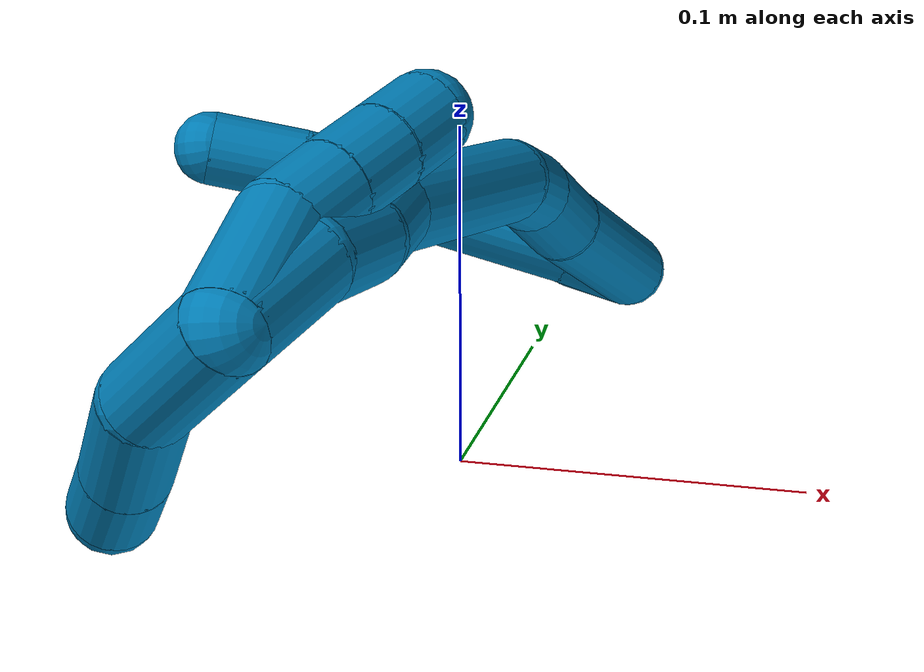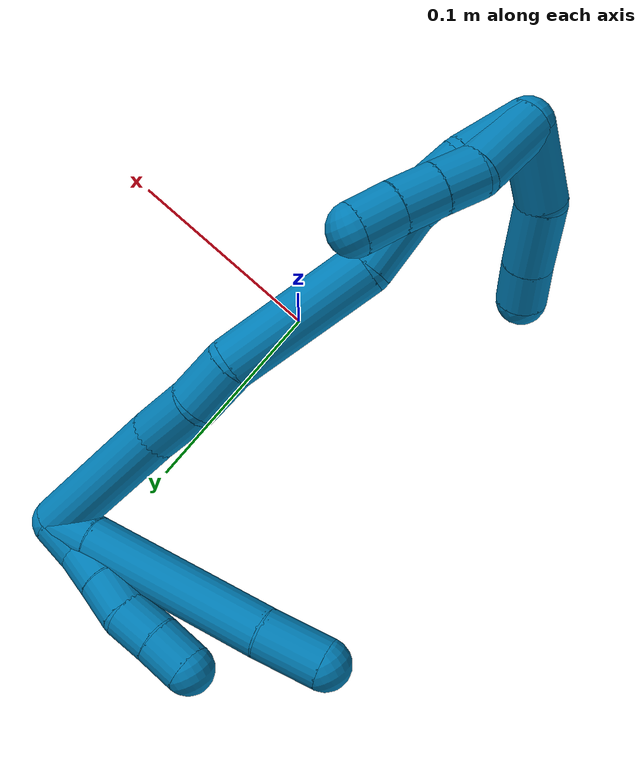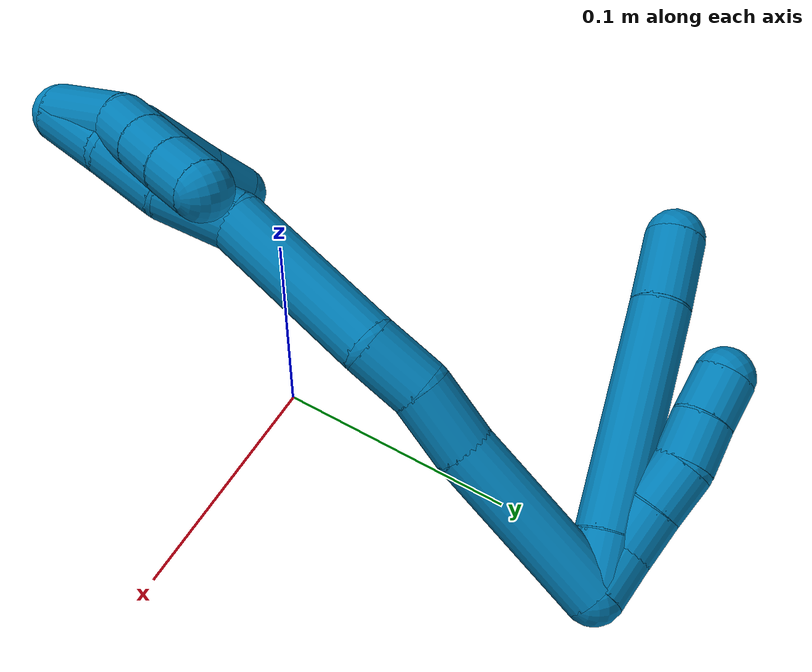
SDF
<sdf version="1.7">
 <world name="default">
  <model name="photoneo_s_sensor">
   <static>1</static>
   <pose>0 0 2 1.57079 1.57079 3.14159</pose>
   <link name="link">
    <inertial><mass>0.1</mass></inertial>
    <sensor name="sensor" type="depth">
     <update_rate>30</update_rate>
     <camera>
      <horizontal_fov>1.22</horizontal_fov>
      <image><width>1920</width><height>1200</height><format>B8G8R8</format></image>
      <clip><near>0.1</near><far>4</far></clip>
      <depth_camera><output>points</output></depth_camera>
     </camera>
     <plugin name="camera_plugin" filename="libgazebo_ros_depth_camera.so">
      <baseline>0.2</baseline>
      <alwaysOn>1</alwaysOn>
      <updateRate>0.0</updateRate>
      <cameraName>camera_ir</cameraName>
      <imageTopicName>/camera/color/image_raw</imageTopicName>
      <cameraInfoTopicName>/camera/color/camera_info</cameraInfoTopicName>
      <depthImageTopicName>/camera/depth/image_raw</depthImageTopicName>
      <depthImageCameraInfoTopicName>/camera/depth/camera_info</depthImageCameraInfoTopicName>
      <pointCloudTopicName>/camera/depth/points</pointCloudTopicName>
      <frameName>fr_optical</frameName>
      <pointCloudCutoff>0.1</pointCloudCutoff>
      <pointCloudCutoffMax>2.0</pointCloudCutoffMax>
      <distortionK1>0</distortionK1>
      <distortionK2>0</distortionK2>
      <distortionK3>0</distortionK3>
      <distortionT1>0</distortionT1>
      <distortionT2>0</distortionT2>
      <CxPrime>0</CxPrime>
      <Cx>0</Cx>
      <Cy>0</Cy>
      <focalLength>0</focalLength>
      <hackBaseline>0</hackBaseline>
     </plugin>
    </sensor>
   </link>
  </model>
  <model name="bin">
   <static>1</static>
   <link name="bottom">
    <collision name="collision-bottom">
     <pose>0 0 -0.01 0 -0 0</pose>
     <geometry><box><size>0.8 0.6 0.02</size></box></geometry>
     <surface>
      <friction><ode><mu>100</mu><mu2>100</mu2></ode></friction>
      <contact><collide_bitmask>65535</collide_bitmask></contact>
     </surface>
    </collision>
   </link>
   <link name="west_wall">
    <collision name="collision-west_wall">
     <pose>-0.41 0 0.1 0 -0 0</pose>
     <geometry><box><size>0.02 0.6 0.2</size></box></geometry>
     <surface>
      <friction><ode><mu>100</mu><mu2>100</mu2></ode></friction>
      <contact><collide_bitmask>65535</collide_bitmask></contact>
     </surface>
    </collision>
   </link>
   <link name="east_wall">
    <collision name="collision-east_wall">
     <pose>0.41 0 0.1 0 -0 0</pose>
     <geometry><box><size>0.02 0.6 0.2</size></box></geometry>
     <surface>
      <friction><ode><mu>100</mu><mu2>100</mu2></ode></friction>
      <contact><collide_bitmask>65535</collide_bitmask></contact>
     </surface>
    </collision>
   </link>
   <link name="south_wall">
    <collision name="collision-south_wall">
     <pose>0 -0.31 0.1 0 -0 0</pose>
     <geometry><box><size>0.8 0.02 0.2</size></box></geometry>
     <surface>
      <friction><ode><mu>100</mu><mu2>100</mu2></ode></friction>
      <contact><collide_bitmask>65535</collide_bitmask></contact>
     </surface>
    </collision>
   </link>
   <link name="north_wall">
    <collision name="collision-north_wall">
     <pose>0 0.31 0.1 0 -0 0</pose>
     <geometry><box><size>0.8 0.02 0.2</size></box></geometry>
     <surface>
      <friction><ode><mu>100</mu><mu2>100</mu2></ode></friction>
      <contact><collide_bitmask>65535</collide_bitmask></contact>
     </surface>
    </collision>
   </link>
  </model>
  <model name="9">
   <static>0</static>
   <link name="9">
    <collision name="collision-cylinder-e_1_2_8">
     <pose>0.007603 -0.004495 0.007205 0.557763 0.730228 0.218043</pose>
     <geometry><cylinder><radius>0.0125</radius><length>0.022797</length></cylinder></geometry>
     <surface>
      <friction><ode><mu>1.16</mu><mu2>1.16</mu2><slip1>0</slip1><slip2>0</slip2></ode></friction>
      <contact><ode><kp>1e+06</kp><kd>1</kd><max_vel>0</max_vel><min_depth>0.001</min_depth></ode></contact>
     </surface>
    </collision>
    <visual name="visual-cylinder-e_1_2_8">
     <pose>0.007603 -0.004495 0.007205 0.557763 0.730228 0.218043</pose>
     <geometry><cylinder><radius>0.0125</radius><length>0.022797</length></cylinder></geometry>
     <material><ambient>0 0.490196 0.709804 1</ambient></material>
    </visual>
    <collision name="collision-cylinder-e_2_8_9">
     <pose>0.044996 -0.02821 0.04639 0.541173 0.673771 0.193696</pose>
     <geometry><cylinder><radius>0.0125</radius><length>0.09549</length></cylinder></geometry>
     <surface>
      <friction><ode><mu>1.16</mu><mu2>1.16</mu2><slip1>0</slip1><slip2>0</slip2></ode></friction>
      <contact><ode><kp>1e+06</kp><kd>1</kd><max_vel>0</max_vel><min_depth>0.001</min_depth></ode></contact>
     </surface>
    </collision>
    <visual name="visual-cylinder-e_2_8_9">
     <pose>0.044996 -0.02821 0.04639 0.541173 0.673771 0.193696</pose>
     <geometry><cylinder><radius>0.0125</radius><length>0.09549</length></cylinder></geometry>
     <material><ambient>0 0.490196 0.709804 1</ambient></material>
    </visual>
    <collision name="collision-cylinder-e_3_9_6">
     <pose>0.083425 -0.054683 0.089515 0.576863 0.57615 0.175387</pose>
     <geometry><cylinder><radius>0.0125</radius><length>0.031713</length></cylinder></geometry>
     <surface>
      <friction><ode><mu>1.16</mu><mu2>1.16</mu2><slip1>0</slip1><slip2>0</slip2></ode></friction>
      <contact><ode><kp>1e+06</kp><kd>1</kd><max_vel>0</max_vel><min_depth>0.001</min_depth></ode></contact>
     </surface>
    </collision>
    <visual name="visual-cylinder-e_3_9_6">
     <pose>0.083425 -0.054683 0.089515 0.576863 0.57615 0.175387</pose>
     <geometry><cylinder><radius>0.0125</radius><length>0.031713</length></cylinder></geometry>
     <material><ambient>0 0.490196 0.709804 1</ambient></material>
    </visual>
    <collision name="collision-cylinder-e_1_2_10">
     <pose>0.00506 -0.001359 0.008517 0.158258 0.530559 0.043079</pose>
     <geometry><cylinder><radius>0.0125</radius><length>0.02</length></cylinder></geometry>
     <surface>
      <friction><ode><mu>1.16</mu><mu2>1.16</mu2><slip1>0</slip1><slip2>0</slip2></ode></friction>
      <contact><ode><kp>1e+06</kp><kd>1</kd><max_vel>0</max_vel><min_depth>0.001</min_depth></ode></contact>
     </surface>
    </collision>
    <visual name="visual-cylinder-e_1_2_10">
     <pose>0.00506 -0.001359 0.008517 0.158258 0.530559 0.043079</pose>
     <geometry><cylinder><radius>0.0125</radius><length>0.02</length></cylinder></geometry>
     <material><ambient>0 0.490196 0.709804 1</ambient></material>
    </visual>
    <collision name="collision-cylinder-e_2_10_11">
     <pose>0.016904 -0.00278 0.024382 0.008406 0.745579 0.003288</pose>
     <geometry><cylinder><radius>0.0125</radius><length>0.02</length></cylinder></geometry>
     <surface>
      <friction><ode><mu>1.16</mu><mu2>1.16</mu2><slip1>0</slip1><slip2>0</slip2></ode></friction>
      <contact><ode><kp>1e+06</kp><kd>1</kd><max_vel>0</max_vel><min_depth>0.001</min_depth></ode></contact>
     </surface>
    </collision>
    <visual name="visual-cylinder-e_2_10_11">
     <pose>0.016904 -0.00278 0.024382 0.008406 0.745579 0.003288</pose>
     <geometry><cylinder><radius>0.0125</radius><length>0.02</length></cylinder></geometry>
     <material><ambient>0 0.490196 0.709804 1</ambient></material>
    </visual>
    <collision name="collision-cylinder-e_3_11_12">
     <pose>0.02996 -0.002787 0.039517 -0.007114 0.677935 -0.002508</pose>
     <geometry><cylinder><radius>0.0125</radius><length>0.02</length></cylinder></geometry>
     <surface>
      <friction><ode><mu>1.16</mu><mu2>1.16</mu2><slip1>0</slip1><slip2>0</slip2></ode></friction>
      <contact><ode><kp>1e+06</kp><kd>1</kd><max_vel>0</max_vel><min_depth>0.001</min_depth></ode></contact>
     </surface>
    </collision>
    <visual name="visual-cylinder-e_3_11_12">
     <pose>0.02996 -0.002787 0.039517 -0.007114 0.677935 -0.002508</pose>
     <geometry><cylinder><radius>0.0125</radius><length>0.02</length></cylinder></geometry>
     <material><ambient>0 0.490196 0.709804 1</ambient></material>
    </visual>
    <collision name="collision-cylinder-e_4_12_13">
     <pose>0.042391 -0.005164 0.054798 0.313924 0.663541 0.108937</pose>
     <geometry><cylinder><radius>0.0125</radius><length>0.02</length></cylinder></geometry>
     <surface>
      <friction><ode><mu>1.16</mu><mu2>1.16</mu2><slip1>0</slip1><slip2>0</slip2></ode></friction>
      <contact><ode><kp>1e+06</kp><kd>1</kd><max_vel>0</max_vel><min_depth>0.001</min_depth></ode></contact>
     </surface>
    </collision>
    <visual name="visual-cylinder-e_4_12_13">
     <pose>0.042391 -0.005164 0.054798 0.313924 0.663541 0.108937</pose>
     <geometry><cylinder><radius>0.0125</radius><length>0.02</length></cylinder></geometry>
     <material><ambient>0 0.490196 0.709804 1</ambient></material>
    </visual>
    <collision name="collision-cylinder-e_5_13_5">
     <pose>0.054085 -0.009811 0.07032 0.269111 0.586569 0.081718</pose>
     <geometry><cylinder><radius>0.0125</radius><length>0.02</length></cylinder></geometry>
     <surface>
      <friction><ode><mu>1.16</mu><mu2>1.16</mu2><slip1>0</slip1><slip2>0</slip2></ode></friction>
      <contact><ode><kp>1e+06</kp><kd>1</kd><max_vel>0</max_vel><min_depth>0.001</min_depth></ode></contact>
     </surface>
    </collision>
    <visual name="visual-cylinder-e_5_13_5">
     <pose>0.054085 -0.009811 0.07032 0.269111 0.586569 0.081718</pose>
     <geometry><cylinder><radius>0.0125</radius><length>0.02</length></cylinder></geometry>
     <material><ambient>0 0.490196 0.709804 1</ambient></material>
    </visual>
    <collision name="collision-cylinder-e_1_2_14">
     <pose>0.023221 -0.026612 -0.010553 1.94833 0.681488 0.962253</pose>
     <geometry><cylinder><radius>0.0125</radius><length>0.073723</length></cylinder></geometry>
     <surface>
      <friction><ode><mu>1.16</mu><mu2>1.16</mu2><slip1>0</slip1><slip2>0</slip2></ode></friction>
      <contact><ode><kp>1e+06</kp><kd>1</kd><max_vel>0</max_vel><min_depth>0.001</min_depth></ode></contact>
     </surface>
    </collision>
    <visual name="visual-cylinder-e_1_2_14">
     <pose>0.023221 -0.026612 -0.010553 1.94833 0.681488 0.962253</pose>
     <geometry><cylinder><radius>0.0125</radius><length>0.073723</length></cylinder></geometry>
     <material><ambient>0 0.490196 0.709804 1</ambient></material>
    </visual>
    <collision name="collision-cylinder-e_2_14_15">
     <pose>0.056701 -0.062387 -0.024606 1.93563 0.807847 1.11112</pose>
     <geometry><cylinder><radius>0.0125</radius><length>0.028387</length></cylinder></geometry>
     <surface>
      <friction><ode><mu>1.16</mu><mu2>1.16</mu2><slip1>0</slip1><slip2>0</slip2></ode></friction>
      <contact><ode><kp>1e+06</kp><kd>1</kd><max_vel>0</max_vel><min_depth>0.001</min_depth></ode></contact>
     </surface>
    </collision>
    <visual name="visual-cylinder-e_2_14_15">
     <pose>0.056701 -0.062387 -0.024606 1.93563 0.807847 1.11112</pose>
     <geometry><cylinder><radius>0.0125</radius><length>0.028387</length></cylinder></geometry>
     <material><ambient>0 0.490196 0.709804 1</ambient></material>
    </visual>
    <collision name="collision-cylinder-e_3_15_16">
     <pose>0.073708 -0.081448 -0.032714 2.00654 0.553557 0.838397</pose>
     <geometry><cylinder><radius>0.0125</radius><length>0.025672</length></cylinder></geometry>
     <surface>
      <friction><ode><mu>1.16</mu><mu2>1.16</mu2><slip1>0</slip1><slip2>0</slip2></ode></friction>
      <contact><ode><kp>1e+06</kp><kd>1</kd><max_vel>0</max_vel><min_depth>0.001</min_depth></ode></contact>
     </surface>
    </collision>
    <visual name="visual-cylinder-e_3_15_16">
     <pose>0.073708 -0.081448 -0.032714 2.00654 0.553557 0.838397</pose>
     <geometry><cylinder><radius>0.0125</radius><length>0.025672</length></cylinder></geometry>
     <material><ambient>0 0.490196 0.709804 1</ambient></material>
    </visual>
    <collision name="collision-cylinder-e_4_16_17">
     <pose>0.093617 -0.12534 -0.042937 1.73448 0.364887 0.428265</pose>
     <geometry><cylinder><radius>0.0125</radius><length>0.073764</length></cylinder></geometry>
     <surface>
      <friction><ode><mu>1.16</mu><mu2>1.16</mu2><slip1>0</slip1><slip2>0</slip2></ode></friction>
      <contact><ode><kp>1e+06</kp><kd>1</kd><max_vel>0</max_vel><min_depth>0.001</min_depth></ode></contact>
     </surface>
    </collision>
    <visual name="visual-cylinder-e_4_16_17">
     <pose>0.093617 -0.12534 -0.042937 1.73448 0.364887 0.428265</pose>
     <geometry><cylinder><radius>0.0125</radius><length>0.073764</length></cylinder></geometry>
     <material><ambient>0 0.490196 0.709804 1</ambient></material>
    </visual>
    <collision name="collision-cylinder-e_5_17_18">
     <pose>0.109896 -0.173489 -0.055441 2.02377 0.195519 0.31108</pose>
     <geometry><cylinder><radius>0.0125</radius><length>0.032097</length></cylinder></geometry>
     <surface>
      <friction><ode><mu>1.16</mu><mu2>1.16</mu2><slip1>0</slip1><slip2>0</slip2></ode></friction>
      <contact><ode><kp>1e+06</kp><kd>1</kd><max_vel>0</max_vel><min_depth>0.001</min_depth></ode></contact>
     </surface>
    </collision>
    <visual name="visual-cylinder-e_5_17_18">
     <pose>0.109896 -0.173489 -0.055441 2.02377 0.195519 0.31108</pose>
     <geometry><cylinder><radius>0.0125</radius><length>0.032097</length></cylinder></geometry>
     <material><ambient>0 0.490196 0.709804 1</ambient></material>
    </visual>
    <collision name="collision-cylinder-e_6_18_19">
     <pose>0.117742 -0.201814 -0.065988 1.82339 0.312507 0.401255</pose>
     <geometry><cylinder><radius>0.0125</radius><length>0.030759</length></cylinder></geometry>
     <surface>
      <friction><ode><mu>1.16</mu><mu2>1.16</mu2><slip1>0</slip1><slip2>0</slip2></ode></friction>
      <contact><ode><kp>1e+06</kp><kd>1</kd><max_vel>0</max_vel><min_depth>0.001</min_depth></ode></contact>
     </surface>
    </collision>
    <visual name="visual-cylinder-e_6_18_19">
     <pose>0.117742 -0.201814 -0.065988 1.82339 0.312507 0.401255</pose>
     <geometry><cylinder><radius>0.0125</radius><length>0.030759</length></cylinder></geometry>
     <material><ambient>0 0.490196 0.709804 1</ambient></material>
    </visual>
    <collision name="collision-cylinder-e_7_19_1">
     <pose>0.123527 -0.233742 -0.070243 1.6044 0.059399 0.061429</pose>
     <geometry><cylinder><radius>0.0125</radius><length>0.035599</length></cylinder></geometry>
     <surface>
      <friction><ode><mu>1.16</mu><mu2>1.16</mu2><slip1>0</slip1><slip2>0</slip2></ode></friction>
      <contact><ode><kp>1e+06</kp><kd>1</kd><max_vel>0</max_vel><min_depth>0.001</min_depth></ode></contact>
     </surface>
    </collision>
    <visual name="visual-cylinder-e_7_19_1">
     <pose>0.123527 -0.233742 -0.070243 1.6044 0.059399 0.061429</pose>
     <geometry><cylinder><radius>0.0125</radius><length>0.035599</length></cylinder></geometry>
     <material><ambient>0 0.490196 0.709804 1</ambient></material>
    </visual>
    <collision name="collision-cylinder-e_1_1_20">
     <pose>0.115357 -0.251754 -0.052658 0.013982 -0.469579 -0.003345</pose>
     <geometry><cylinder><radius>0.0125</radius><length>0.040781</length></cylinder></geometry>
     <surface>
      <friction><ode><mu>1.16</mu><mu2>1.16</mu2><slip1>0</slip1><slip2>0</slip2></ode></friction>
      <contact><ode><kp>1e+06</kp><kd>1</kd><max_vel>0</max_vel><min_depth>0.001</min_depth></ode></contact>
     </surface>
    </collision>
    <visual name="visual-cylinder-e_1_1_20">
     <pose>0.115357 -0.251754 -0.052658 0.013982 -0.469579 -0.003345</pose>
     <geometry><cylinder><radius>0.0125</radius><length>0.040781</length></cylinder></geometry>
     <material><ambient>0 0.490196 0.709804 1</ambient></material>
    </visual>
    <collision name="collision-cylinder-e_2_20_21">
     <pose>0.093951 -0.248402 -0.021151 -0.264272 -0.722893 0.100411</pose>
     <geometry><cylinder><radius>0.0125</radius><length>0.036819</length></cylinder></geometry>
     <surface>
      <friction><ode><mu>1.16</mu><mu2>1.16</mu2><slip1>0</slip1><slip2>0</slip2></ode></friction>
      <contact><ode><kp>1e+06</kp><kd>1</kd><max_vel>0</max_vel><min_depth>0.001</min_depth></ode></contact>
     </surface>
    </collision>
    <visual name="visual-cylinder-e_2_20_21">
     <pose>0.093951 -0.248402 -0.021151 -0.264272 -0.722893 0.100411</pose>
     <geometry><cylinder><radius>0.0125</radius><length>0.036819</length></cylinder></geometry>
     <material><ambient>0 0.490196 0.709804 1</ambient></material>
    </visual>
    <collision name="collision-cylinder-e_3_21_4">
     <pose>0.074642 -0.242732 0.000562 -0.24136 -0.690106 0.087121</pose>
     <geometry><cylinder><radius>0.0125</radius><length>0.0224</length></cylinder></geometry>
     <surface>
      <friction><ode><mu>1.16</mu><mu2>1.16</mu2><slip1>0</slip1><slip2>0</slip2></ode></friction>
      <contact><ode><kp>1e+06</kp><kd>1</kd><max_vel>0</max_vel><min_depth>0.001</min_depth></ode></contact>
     </surface>
    </collision>
    <visual name="visual-cylinder-e_3_21_4">
     <pose>0.074642 -0.242732 0.000562 -0.24136 -0.690106 0.087121</pose>
     <geometry><cylinder><radius>0.0125</radius><length>0.0224</length></cylinder></geometry>
     <material><ambient>0 0.490196 0.709804 1</ambient></material>
    </visual>
    <collision name="collision-cylinder-e_1_1_22">
     <pose>0.128403 -0.233001 -0.067652 -1.40015 0.200718 -0.169253</pose>
     <geometry><cylinder><radius>0.0125</radius><length>0.038312</length></cylinder></geometry>
     <surface>
      <friction><ode><mu>1.16</mu><mu2>1.16</mu2><slip1>0</slip1><slip2>0</slip2></ode></friction>
      <contact><ode><kp>1e+06</kp><kd>1</kd><max_vel>0</max_vel><min_depth>0.001</min_depth></ode></contact>
     </surface>
    </collision>
    <visual name="visual-cylinder-e_1_1_22">
     <pose>0.128403 -0.233001 -0.067652 -1.40015 0.200718 -0.169253</pose>
     <geometry><cylinder><radius>0.0125</radius><length>0.038312</length></cylinder></geometry>
     <material><ambient>0 0.490196 0.709804 1</ambient></material>
    </visual>
    <collision name="collision-cylinder-e_2_22_23">
     <pose>0.132002 -0.204337 -0.065403 -1.66287 -0.02155 0.023632</pose>
     <geometry><cylinder><radius>0.0125</radius><length>0.020422</length></cylinder></geometry>
     <surface>
      <friction><ode><mu>1.16</mu><mu2>1.16</mu2><slip1>0</slip1><slip2>0</slip2></ode></friction>
      <contact><ode><kp>1e+06</kp><kd>1</kd><max_vel>0</max_vel><min_depth>0.001</min_depth></ode></contact>
     </surface>
    </collision>
    <visual name="visual-cylinder-e_2_22_23">
     <pose>0.132002 -0.204337 -0.065403 -1.66287 -0.02155 0.023632</pose>
     <geometry><cylinder><radius>0.0125</radius><length>0.020422</length></cylinder></geometry>
     <material><ambient>0 0.490196 0.709804 1</ambient></material>
    </visual>
    <collision name="collision-cylinder-e_3_23_24">
     <pose>0.131314 -0.183719 -0.067138 -1.64685 -0.044581 0.048106</pose>
     <geometry><cylinder><radius>0.0125</radius><length>0.020987</length></cylinder></geometry>
     <surface>
      <friction><ode><mu>1.16</mu><mu2>1.16</mu2><slip1>0</slip1><slip2>0</slip2></ode></friction>
      <contact><ode><kp>1e+06</kp><kd>1</kd><max_vel>0</max_vel><min_depth>0.001</min_depth></ode></contact>
     </surface>
    </collision>
    <visual name="visual-cylinder-e_3_23_24">
     <pose>0.131314 -0.183719 -0.067138 -1.64685 -0.044581 0.048106</pose>
     <geometry><cylinder><radius>0.0125</radius><length>0.020987</length></cylinder></geometry>
     <material><ambient>0 0.490196 0.709804 1</ambient></material>
    </visual>
    <collision name="collision-cylinder-e_4_24_3">
     <pose>0.130238 -0.163149 -0.068217 -1.59865 -0.060051 0.061747</pose>
     <geometry><cylinder><radius>0.0125</radius><length>0.020279</length></cylinder></geometry>
     <surface>
      <friction><ode><mu>1.16</mu><mu2>1.16</mu2><slip1>0</slip1><slip2>0</slip2></ode></friction>
      <contact><ode><kp>1e+06</kp><kd>1</kd><max_vel>0</max_vel><min_depth>0.001</min_depth></ode></contact>
     </surface>
    </collision>
    <visual name="visual-cylinder-e_4_24_3">
     <pose>0.130238 -0.163149 -0.068217 -1.59865 -0.060051 0.061747</pose>
     <geometry><cylinder><radius>0.0125</radius><length>0.020279</length></cylinder></geometry>
     <material><ambient>0 0.490196 0.709804 1</ambient></material>
    </visual>
    <collision name="collision-sphere-3">
     <pose>0.12963 -0.153031 -0.068499 0 -0 0</pose>
     <geometry><sphere><radius>0.0125</radius></sphere></geometry>
     <surface>
      <friction><ode><mu>1.16</mu><mu2>1.16</mu2><slip1>0</slip1><slip2>0</slip2></ode></friction>
      <contact><ode><kp>1e+06</kp><kd>1</kd><max_vel>0</max_vel><min_depth>0.001</min_depth></ode></contact>
     </surface>
    </collision>
    <visual name="visual-sphere-3">
     <pose>0.12963 -0.153031 -0.068499 0 -0 0</pose>
     <geometry><sphere><radius>0.0125</radius></sphere></geometry>
     <material><ambient>0 0.490196 0.709804 1</ambient></material>
    </visual>
    <collision name="collision-sphere-24">
     <pose>0.130847 -0.173266 -0.067935 0 -0 0</pose>
     <geometry><sphere><radius>0.0125</radius></sphere></geometry>
     <surface>
      <friction><ode><mu>1.16</mu><mu2>1.16</mu2><slip1>0</slip1><slip2>0</slip2></ode></friction>
      <contact><ode><kp>1e+06</kp><kd>1</kd><max_vel>0</max_vel><min_depth>0.001</min_depth></ode></contact>
     </surface>
    </collision>
    <visual name="visual-sphere-24">
     <pose>0.130847 -0.173266 -0.067935 0 -0 0</pose>
     <geometry><sphere><radius>0.0125</radius></sphere></geometry>
     <material><ambient>0 0.490196 0.709804 1</ambient></material>
    </visual>
    <collision name="collision-sphere-23">
     <pose>0.131782 -0.194172 -0.066342 0 -0 0</pose>
     <geometry><sphere><radius>0.0125</radius></sphere></geometry>
     <surface>
      <friction><ode><mu>1.16</mu><mu2>1.16</mu2><slip1>0</slip1><slip2>0</slip2></ode></friction>
      <contact><ode><kp>1e+06</kp><kd>1</kd><max_vel>0</max_vel><min_depth>0.001</min_depth></ode></contact>
     </surface>
    </collision>
    <visual name="visual-sphere-23">
     <pose>0.131782 -0.194172 -0.066342 0 -0 0</pose>
     <geometry><sphere><radius>0.0125</radius></sphere></geometry>
     <material><ambient>0 0.490196 0.709804 1</ambient></material>
    </visual>
    <collision name="collision-sphere-22">
     <pose>0.132222 -0.214502 -0.064464 0 -0 0</pose>
     <geometry><sphere><radius>0.0125</radius></sphere></geometry>
     <surface>
      <friction><ode><mu>1.16</mu><mu2>1.16</mu2><slip1>0</slip1><slip2>0</slip2></ode></friction>
      <contact><ode><kp>1e+06</kp><kd>1</kd><max_vel>0</max_vel><min_depth>0.001</min_depth></ode></contact>
     </surface>
    </collision>
    <visual name="visual-sphere-22">
     <pose>0.132222 -0.214502 -0.064464 0 -0 0</pose>
     <geometry><sphere><radius>0.0125</radius></sphere></geometry>
     <material><ambient>0 0.490196 0.709804 1</ambient></material>
    </visual>
    <collision name="collision-sphere-4">
     <pose>0.067512 -0.240667 0.008949 0 -0 0</pose>
     <geometry><sphere><radius>0.0125</radius></sphere></geometry>
     <surface>
      <friction><ode><mu>1.16</mu><mu2>1.16</mu2><slip1>0</slip1><slip2>0</slip2></ode></friction>
      <contact><ode><kp>1e+06</kp><kd>1</kd><max_vel>0</max_vel><min_depth>0.001</min_depth></ode></contact>
     </surface>
    </collision>
    <visual name="visual-sphere-4">
     <pose>0.067512 -0.240667 0.008949 0 -0 0</pose>
     <geometry><sphere><radius>0.0125</radius></sphere></geometry>
     <material><ambient>0 0.490196 0.709804 1</ambient></material>
    </visual>
    <collision name="collision-sphere-21">
     <pose>0.081772 -0.244796 -0.007825 0 -0 0</pose>
     <geometry><sphere><radius>0.0125</radius></sphere></geometry>
     <surface>
      <friction><ode><mu>1.16</mu><mu2>1.16</mu2><slip1>0</slip1><slip2>0</slip2></ode></friction>
      <contact><ode><kp>1e+06</kp><kd>1</kd><max_vel>0</max_vel><min_depth>0.001</min_depth></ode></contact>
     </surface>
    </collision>
    <visual name="visual-sphere-21">
     <pose>0.081772 -0.244796 -0.007825 0 -0 0</pose>
     <geometry><sphere><radius>0.0125</radius></sphere></geometry>
     <material><ambient>0 0.490196 0.709804 1</ambient></material>
    </visual>
    <collision name="collision-sphere-20">
     <pose>0.10613 -0.252008 -0.034477 0 -0 0</pose>
     <geometry><sphere><radius>0.0125</radius></sphere></geometry>
     <surface>
      <friction><ode><mu>1.16</mu><mu2>1.16</mu2><slip1>0</slip1><slip2>0</slip2></ode></friction>
      <contact><ode><kp>1e+06</kp><kd>1</kd><max_vel>0</max_vel><min_depth>0.001</min_depth></ode></contact>
     </surface>
    </collision>
    <visual name="visual-sphere-20">
     <pose>0.10613 -0.252008 -0.034477 0 -0 0</pose>
     <geometry><sphere><radius>0.0125</radius></sphere></geometry>
     <material><ambient>0 0.490196 0.709804 1</ambient></material>
    </visual>
    <collision name="collision-sphere-11">
     <pose>0.023688 -0.002842 0.031728 0 -0 0</pose>
     <geometry><sphere><radius>0.0125</radius></sphere></geometry>
     <surface>
      <friction><ode><mu>1.16</mu><mu2>1.16</mu2><slip1>0</slip1><slip2>0</slip2></ode></friction>
      <contact><ode><kp>1e+06</kp><kd>1</kd><max_vel>0</max_vel><min_depth>0.001</min_depth></ode></contact>
     </surface>
    </collision>
    <visual name="visual-sphere-11">
     <pose>0.023688 -0.002842 0.031728 0 -0 0</pose>
     <geometry><sphere><radius>0.0125</radius></sphere></geometry>
     <material><ambient>0 0.490196 0.709804 1</ambient></material>
    </visual>
    <collision name="collision-sphere-10">
     <pose>0.01012 -0.002719 0.017035 0 -0 0</pose>
     <geometry><sphere><radius>0.0125</radius></sphere></geometry>
     <surface>
      <friction><ode><mu>1.16</mu><mu2>1.16</mu2><slip1>0</slip1><slip2>0</slip2></ode></friction>
      <contact><ode><kp>1e+06</kp><kd>1</kd><max_vel>0</max_vel><min_depth>0.001</min_depth></ode></contact>
     </surface>
    </collision>
    <visual name="visual-sphere-10">
     <pose>0.01012 -0.002719 0.017035 0 -0 0</pose>
     <geometry><sphere><radius>0.0125</radius></sphere></geometry>
     <material><ambient>0 0.490196 0.709804 1</ambient></material>
    </visual>
    <collision name="collision-sphere-6">
     <pose>0.092063 -0.061935 0.10066 0 -0 0</pose>
     <geometry><sphere><radius>0.0125</radius></sphere></geometry>
     <surface>
      <friction><ode><mu>1.16</mu><mu2>1.16</mu2><slip1>0</slip1><slip2>0</slip2></ode></friction>
      <contact><ode><kp>1e+06</kp><kd>1</kd><max_vel>0</max_vel><min_depth>0.001</min_depth></ode></contact>
     </surface>
    </collision>
    <visual name="visual-sphere-6">
     <pose>0.092063 -0.061935 0.10066 0 -0 0</pose>
     <geometry><sphere><radius>0.0125</radius></sphere></geometry>
     <material><ambient>0 0.490196 0.709804 1</ambient></material>
    </visual>
    <collision name="collision-sphere-9">
     <pose>0.074786 -0.047431 0.07837 0 -0 0</pose>
     <geometry><sphere><radius>0.0125</radius></sphere></geometry>
     <surface>
      <friction><ode><mu>1.16</mu><mu2>1.16</mu2><slip1>0</slip1><slip2>0</slip2></ode></friction>
      <contact><ode><kp>1e+06</kp><kd>1</kd><max_vel>0</max_vel><min_depth>0.001</min_depth></ode></contact>
     </surface>
    </collision>
    <visual name="visual-sphere-9">
     <pose>0.074786 -0.047431 0.07837 0 -0 0</pose>
     <geometry><sphere><radius>0.0125</radius></sphere></geometry>
     <material><ambient>0 0.490196 0.709804 1</ambient></material>
    </visual>
    <collision name="collision-sphere-2">
     <geometry><sphere><radius>0.0125</radius></sphere></geometry>
     <surface>
      <friction><ode><mu>1.16</mu><mu2>1.16</mu2><slip1>0</slip1><slip2>0</slip2></ode></friction>
      <contact><ode><kp>1e+06</kp><kd>1</kd><max_vel>0</max_vel><min_depth>0.001</min_depth></ode></contact>
     </surface>
    </collision>
    <visual name="visual-sphere-2">
     <geometry><sphere><radius>0.0125</radius></sphere></geometry>
     <material><ambient>0 0.490196 0.709804 1</ambient></material>
    </visual>
    <collision name="collision-sphere-19">
     <pose>0.12247 -0.215984 -0.069646 0 -0 0</pose>
     <geometry><sphere><radius>0.0125</radius></sphere></geometry>
     <surface>
      <friction><ode><mu>1.16</mu><mu2>1.16</mu2><slip1>0</slip1><slip2>0</slip2></ode></friction>
      <contact><ode><kp>1e+06</kp><kd>1</kd><max_vel>0</max_vel><min_depth>0.001</min_depth></ode></contact>
     </surface>
    </collision>
    <visual name="visual-sphere-19">
     <pose>0.12247 -0.215984 -0.069646 0 -0 0</pose>
     <geometry><sphere><radius>0.0125</radius></sphere></geometry>
     <material><ambient>0 0.490196 0.709804 1</ambient></material>
    </visual>
    <collision name="collision-sphere-8">
     <pose>0.015206 -0.008989 0.01441 0 -0 0</pose>
     <geometry><sphere><radius>0.0125</radius></sphere></geometry>
     <surface>
      <friction><ode><mu>1.16</mu><mu2>1.16</mu2><slip1>0</slip1><slip2>0</slip2></ode></friction>
      <contact><ode><kp>1e+06</kp><kd>1</kd><max_vel>0</max_vel><min_depth>0.001</min_depth></ode></contact>
     </surface>
    </collision>
    <visual name="visual-sphere-8">
     <pose>0.015206 -0.008989 0.01441 0 -0 0</pose>
     <geometry><sphere><radius>0.0125</radius></sphere></geometry>
     <material><ambient>0 0.490196 0.709804 1</ambient></material>
    </visual>
    <collision name="collision-sphere-12">
     <pose>0.036232 -0.002731 0.047305 0 -0 0</pose>
     <geometry><sphere><radius>0.0125</radius></sphere></geometry>
     <surface>
      <friction><ode><mu>1.16</mu><mu2>1.16</mu2><slip1>0</slip1><slip2>0</slip2></ode></friction>
      <contact><ode><kp>1e+06</kp><kd>1</kd><max_vel>0</max_vel><min_depth>0.001</min_depth></ode></contact>
     </surface>
    </collision>
    <visual name="visual-sphere-12">
     <pose>0.036232 -0.002731 0.047305 0 -0 0</pose>
     <geometry><sphere><radius>0.0125</radius></sphere></geometry>
     <material><ambient>0 0.490196 0.709804 1</ambient></material>
    </visual>
    <collision name="collision-sphere-13">
     <pose>0.04855 -0.007597 0.062292 0 -0 0</pose>
     <geometry><sphere><radius>0.0125</radius></sphere></geometry>
     <surface>
      <friction><ode><mu>1.16</mu><mu2>1.16</mu2><slip1>0</slip1><slip2>0</slip2></ode></friction>
      <contact><ode><kp>1e+06</kp><kd>1</kd><max_vel>0</max_vel><min_depth>0.001</min_depth></ode></contact>
     </surface>
    </collision>
    <visual name="visual-sphere-13">
     <pose>0.04855 -0.007597 0.062292 0 -0 0</pose>
     <geometry><sphere><radius>0.0125</radius></sphere></geometry>
     <material><ambient>0 0.490196 0.709804 1</ambient></material>
    </visual>
    <collision name="collision-sphere-5">
     <pose>0.05962 -0.012025 0.078349 0 -0 0</pose>
     <geometry><sphere><radius>0.0125</radius></sphere></geometry>
     <surface>
      <friction><ode><mu>1.16</mu><mu2>1.16</mu2><slip1>0</slip1><slip2>0</slip2></ode></friction>
      <contact><ode><kp>1e+06</kp><kd>1</kd><max_vel>0</max_vel><min_depth>0.001</min_depth></ode></contact>
     </surface>
    </collision>
    <visual name="visual-sphere-5">
     <pose>0.05962 -0.012025 0.078349 0 -0 0</pose>
     <geometry><sphere><radius>0.0125</radius></sphere></geometry>
     <material><ambient>0 0.490196 0.709804 1</ambient></material>
    </visual>
    <collision name="collision-sphere-14">
     <pose>0.046442 -0.053224 -0.021106 0 -0 0</pose>
     <geometry><sphere><radius>0.0125</radius></sphere></geometry>
     <surface>
      <friction><ode><mu>1.16</mu><mu2>1.16</mu2><slip1>0</slip1><slip2>0</slip2></ode></friction>
      <contact><ode><kp>1e+06</kp><kd>1</kd><max_vel>0</max_vel><min_depth>0.001</min_depth></ode></contact>
     </surface>
    </collision>
    <visual name="visual-sphere-14">
     <pose>0.046442 -0.053224 -0.021106 0 -0 0</pose>
     <geometry><sphere><radius>0.0125</radius></sphere></geometry>
     <material><ambient>0 0.490196 0.709804 1</ambient></material>
    </visual>
    <collision name="collision-sphere-15">
     <pose>0.06696 -0.071549 -0.028105 0 -0 0</pose>
     <geometry><sphere><radius>0.0125</radius></sphere></geometry>
     <surface>
      <friction><ode><mu>1.16</mu><mu2>1.16</mu2><slip1>0</slip1><slip2>0</slip2></ode></friction>
      <contact><ode><kp>1e+06</kp><kd>1</kd><max_vel>0</max_vel><min_depth>0.001</min_depth></ode></contact>
     </surface>
    </collision>
    <visual name="visual-sphere-15">
     <pose>0.06696 -0.071549 -0.028105 0 -0 0</pose>
     <geometry><sphere><radius>0.0125</radius></sphere></geometry>
     <material><ambient>0 0.490196 0.709804 1</ambient></material>
    </visual>
    <collision name="collision-sphere-16">
     <pose>0.080456 -0.091347 -0.037323 0 -0 0</pose>
     <geometry><sphere><radius>0.0125</radius></sphere></geometry>
     <surface>
      <friction><ode><mu>1.16</mu><mu2>1.16</mu2><slip1>0</slip1><slip2>0</slip2></ode></friction>
      <contact><ode><kp>1e+06</kp><kd>1</kd><max_vel>0</max_vel><min_depth>0.001</min_depth></ode></contact>
     </surface>
    </collision>
    <visual name="visual-sphere-16">
     <pose>0.080456 -0.091347 -0.037323 0 -0 0</pose>
     <geometry><sphere><radius>0.0125</radius></sphere></geometry>
     <material><ambient>0 0.490196 0.709804 1</ambient></material>
    </visual>
    <collision name="collision-sphere-17">
     <pose>0.106778 -0.159334 -0.048552 0 -0 0</pose>
     <geometry><sphere><radius>0.0125</radius></sphere></geometry>
     <surface>
      <friction><ode><mu>1.16</mu><mu2>1.16</mu2><slip1>0</slip1><slip2>0</slip2></ode></friction>
      <contact><ode><kp>1e+06</kp><kd>1</kd><max_vel>0</max_vel><min_depth>0.001</min_depth></ode></contact>
     </surface>
    </collision>
    <visual name="visual-sphere-17">
     <pose>0.106778 -0.159334 -0.048552 0 -0 0</pose>
     <geometry><sphere><radius>0.0125</radius></sphere></geometry>
     <material><ambient>0 0.490196 0.709804 1</ambient></material>
    </visual>
    <collision name="collision-sphere-18">
     <pose>0.113014 -0.187644 -0.062331 0 -0 0</pose>
     <geometry><sphere><radius>0.0125</radius></sphere></geometry>
     <surface>
      <friction><ode><mu>1.16</mu><mu2>1.16</mu2><slip1>0</slip1><slip2>0</slip2></ode></friction>
      <contact><ode><kp>1e+06</kp><kd>1</kd><max_vel>0</max_vel><min_depth>0.001</min_depth></ode></contact>
     </surface>
    </collision>
    <visual name="visual-sphere-18">
     <pose>0.113014 -0.187644 -0.062331 0 -0 0</pose>
     <geometry><sphere><radius>0.0125</radius></sphere></geometry>
     <material><ambient>0 0.490196 0.709804 1</ambient></material>
    </visual>
    <collision name="collision-sphere-1">
     <pose>0.124584 -0.2515 -0.07084 0 -0 0</pose>
     <geometry><sphere><radius>0.0125</radius></sphere></geometry>
     <surface>
      <friction><ode><mu>1.16</mu><mu2>1.16</mu2><slip1>0</slip1><slip2>0</slip2></ode></friction>
      <contact><ode><kp>1e+06</kp><kd>1</kd><max_vel>0</max_vel><min_depth>0.001</min_depth></ode></contact>
     </surface>
    </collision>
    <visual name="visual-sphere-1">
     <pose>0.124584 -0.2515 -0.07084 0 -0 0</pose>
     <geometry><sphere><radius>0.0125</radius></sphere></geometry>
     <material><ambient>0 0.490196 0.709804 1</ambient></material>
    </visual>
    <inertial>
     <pose>0.075463 -0.113665 -0.013391 0 -0 0</pose>
     <mass>0.75</mass>
     <inertia>
      <ixx>0.000226</ixx>
      <ixy>0</ixy>
      <ixz>0</ixz>
      <iyy>0.000145</iyy>
      <iyz>0</iyz>
      <izz>2.3e-05</izz>
     </inertia>
    </inertial>
   </link>
   <pose>0.022637 0.151284 0.012515 2.3468 -1.20253 -2.67923</pose>
  </model>
 </world>
</sdf>
